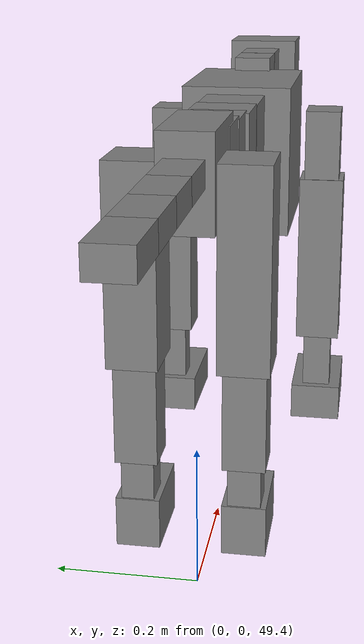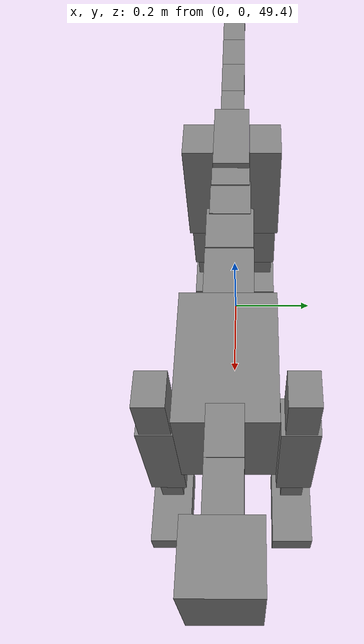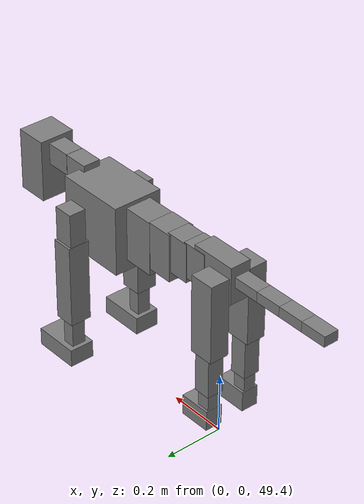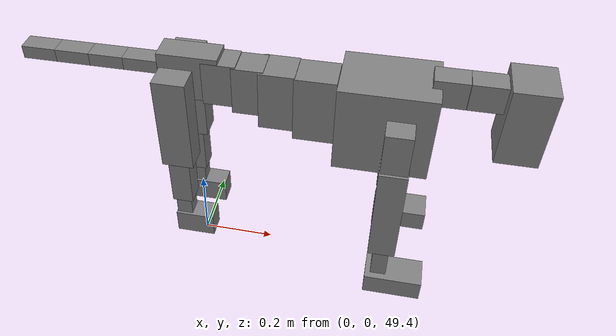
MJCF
<mujoco model="dog">

    <default>
        <joint armature="0.02" stiffness="1" damping="0.2" limited="true"/>
        <geom condim="3" friction="1 0.05 0.05" margin="0.01"/>
        <motor ctrllimited="true" ctrlrange="-1.0 1.0" forcelimited="true" gear="50"/>
    </default>

    <compiler inertiafromgeom="true" angle="radian"/>

    <option timestep="0.016" iterations="50" tolerance="1e-10" solver="Newton" jacobian="dense" cone="pyramidal"/>

    <size nconmax="20000" njmax="60000" nstack="5000000"/>
    <visual>
        <map force="0.1" zfar="30"/>
        <rgba haze="0.15 0.25 0.35 1"/>
        <quality shadowsize="2048"/>
        <global offwidth="800" offheight="800"/>
    </visual>

    <asset>
        <texture type="skybox" builtin="gradient" rgb1="0.3 0.5 0.7" rgb2="0 0 0" width="512" height="512"/>
        <texture name="texplane" type="2d" builtin="checker" rgb1=".2 .3 .4" rgb2=".1 0.15 0.2" width="512" height="512"
                 mark="cross" markrgb=".8 .8 .8"/>
        <texture name="texgeom" type="cube" builtin="flat" mark="cross" width="127" height="1278" rgb1="0.8 0.6 0.4"
                 rgb2="0.8 0.6 0.4" markrgb="1 1 1" random="0.01"/>

        <material name="matplane" reflectance="0.3" texture="texplane" texrepeat="1 1" texuniform="true"/>
        <material name="matgeom" texture="texgeom" texuniform="true" rgba="0.8 0.6 .4 1"/>
    </asset>

    <worldbody>
        <geom name="floor" pos="0 0 0" size="0 0 .25" type="plane" material="matplane" condim="3"/>

        <light directional="false" diffuse=".2 .2 .2" specular="0 0 0" pos="0 0 5" dir="0 0 -1" castshadow="false"/>
        <light mode="targetbodycom" target="torso" directional="false" diffuse=".8 .8 .8" specular="0.3 0.3 0.3"
               pos="0 0 4.0" dir="0 0 -1"/>

        <body name="root" pos="0 0 50">
            <freejoint name="root_1"/>
            <geom type="box" pos="0 0 -0.02" size="0.0774  0.0358  0.063" density="2030"/>

            <body name="spine1" pos="0.054 0 0">
                <joint name="spine1_y" axis="0 1 0" range="0 0.7" limited="true"/>
                <geom type="box" pos="0.02375 0 -0.03" size="0.04375  0.0375  0.05985" density="2030"/>

                <body name="spine2" pos="0.0612 0 0">
                    <joint name="spine2_y" axis="0 1 0" range="-0.15 0.15" limited="true"/>
                    <geom type="box" pos="0.03555  0  -0.04" size="0.04055  0.039  0.06615" density="2030"/>

                    <body name="spine3" pos="0.0730 0 0">
                        <joint name="spine3_y" axis="0 1 0" range="-0.15 0.15" limited="true"/>
                        <geom type="box" pos="0.03555  0  -0.057" size="0.04555  0.0445  0.081" density="2030"/>

                        <body name="spine4" pos="0.0780 0 0">
                            <joint name="spine4_y" axis="0 1 0" range="-0.15 0.15" limited="true"/>
                            <geom type="box" pos="0.05265  0  -0.07" size="0.05265  0.045  0.09135" density="2030"/>

                            <body name="torso" pos="0.1082 0 0">
                                <joint name="torso_y" axis="0 1 0" range="-0.15 0.15" limited="true"/>
                                <geom type="box" pos="0.11925  0  -0.085" size="0.11925  0.085  0.11745"
                                      density="2030"/>

                                <body name="neck1" pos="0.2160  0   0.0180">
                                    <joint name="neck1_y" axis="0 1 0" range="-1.2  -1" limited="true"/>
                                    <geom type="box" pos="0.0423  0  0" size="0.0423  0.03  0.036" density="2325"/>

                                    <body name="neck2" pos="0.0853  0  0">
                                        <joint name="neck2_y" axis="0 1 0" range="0.1  0" limited="true"/>
                                        <geom type="box" pos="0.0423  0  0" size="0.0423  0.03  0.036" density="2325"/>

                                        <body name="head" pos="0.0853  0  0">
                                            <joint name="head_y" axis="0 1 0" range="-0.3  -0.2" limited="true"/>
                                            <geom type="box" pos="0.0531  0  -0.055" size="0.0531  0.06  0.1044"
                                                  density="4030"/>

                                        </body>
                                    </body>
                                </body>

                                <body name="front_shoulder" pos="0.156  0   -0.0480">
                                    <joint name="front_shoulder_y" axis="0 1 0" range="-1 1.5" limited="true"/>
                                    <geom type="box" pos="0 0.13 -0.0442" size="0.0336  0.0287  0.0708" density="1158"/>
                                    <geom type="box" pos="0 -0.13 -0.0442" size="0.0336  0.0287  0.0708"
                                          density="1158"/>

                                    <body name="front_elbow" pos="0  0  -0.0884">
                                        <joint name="front_elbow_y" axis="0 1 0" range="-2 0" limited="true"/>
                                        <geom type="box" pos="0 0.13 -0.1409" size="0.0355  0.0363  0.1409"
                                              density="1081"/>
                                        <geom type="box" pos="0 -0.13 -0.1409" size="0.0355  0.0363  0.1409"
                                              density="1081"/>

                                        <body name="front_wrist" pos="0  0  -0.2818">
                                            <joint name="front_wrist_y" axis="0 1 0" range="-0.2 0" limited="true"/>
                                            <geom type="box" pos="0 0.13 -0.0543" size="0.0211  0.0234  0.0674"
                                                  density="1664"/>
                                            <geom type="box" pos="0 -0.13 -0.0543" size="0.0211  0.0234  0.0674"
                                                  density="1664"/>

                                            <body name="front_finger_end" pos="0  0  -0.1086">
                                                <joint name="front_finger_y" axis="0 1 0" range="-0.4 1"
                                                       limited="true"/>
                                                <geom type="box" pos="0.0421  0.13  -0.0151"
                                                      size="0.0772  0.0421  0.0301" density="1515"/>
                                                <geom type="box" pos="0.0421  -0.13  -0.0151"
                                                      size="0.0772  0.0421  0.0301" density="1515"/>

                                            </body>

                                        </body>
                                    </body>
                                </body>

                            </body>
                        </body>
                    </body>
                </body>
            </body>

            <body name="back_hip" pos="-0.03 0 -0.018">
                <joint name="back_hip_y" axis="0 1 0" range="-1.5 0.3" limited="true"/>
                <geom type="box" pos="0 0.07 -0.1098" size="0.0424  0.0332  0.1326" density="1154"/>
                <geom type="box" pos="0 -0.07 -0.1098" size="0.0424  0.0332  0.1326" density="1154"/>

                <body name="back_knee" pos="0  0  -0.2197">
                    <joint name="back_knee_y" axis="0 1 0" range="0 2.8" limited="true"/>
                    <geom type="box" pos="0 0.07 -0.0713" size="0.0284  0.0280  0.0868" density="1227"/>
                    <geom type="box" pos="0 -0.07 -0.0713" size="0.0284  0.0280  0.0868" density="1227"/>

                    <body name="back_ankle" pos="0  0  -0.1425">
                        <joint name="back_ankle_y" axis="0 1 0" range="-2.2 0" limited="true"/>
                        <geom type="box" pos="0 0.07 -0.0421" size="0.0216  0.0216  0.0534" density="1284"/>
                        <geom type="box" pos="0 -0.07 -0.0421" size="0.0216  0.0216  0.0534" density="1284"/>

                        <body name="back_toe_end" pos="0  0  -0.0843">
                            <joint name="back_toe_y" axis="0 1 0" range="-0.4 1" limited="true"/>
                            <geom type="box" pos="0.0291  0.07  -0.0193" size="0.0534  0.0291  0.0343" density="1515"/>
                            <geom type="box" pos="0.0291  -0.07  -0.0193" size="0.0534  0.0291  0.0343" density="1515"/>

                        </body>
                    </body>
                </body>
            </body>

            <body name="tail1" pos="-0.074 0 -0.006">
                <joint name="tail1_y" axis="0 1 0" range="-0.2 0.2" limited="true"/>
                <geom type="box" pos="-0.0536  0  0" size="0.045  0.025  0.0175" density="1587"/>

                <body name="tail2" pos="-0.09 0 0">
                    <joint name="tail2_y" axis="0 1 0" range="-0.2 0.2" limited="true"/>
                    <geom type="box" pos="-0.0536  0  0" size="0.045  0.025  0.0175" density="1587"/>

                    <body name="tail3" pos="-0.09 0 0">
                        <joint name="tail3_y" axis="0 1 0" range="-0.2 0.2" limited="true"/>
                        <geom type="box" pos="-0.0536  0  0" size="0.045  0.025  0.0175" density="1587"/>

                        <body name="tail4" pos="-0.09 0 0">
                            <joint name="tail4_y" axis="0 1 0" range="-0.2 0.2" limited="true"/>
                            <geom type="box" pos="-0.0536  0  0" size="0.045  0.025  0.0175" density="1587"/>

                        </body>
                    </body>
                </body>
            </body>
        </body>
    </worldbody>

    <actuator>
        <motor joint="spine1_y" forcerange="-150 150     "/>
        <motor joint="spine2_y" forcerange="-150 150     "/>
        <motor joint="spine3_y" forcerange="-150 150     "/>
        <motor joint="spine4_y" forcerange="-150 150     "/>
        <motor joint="torso_y" forcerange="-150 150     "/>
        <motor joint="neck1_y" forcerange="-100 100       "/>
        <motor joint="neck2_y" forcerange="-100 100       "/>
        <motor joint="head_y" forcerange="-150 150       "/>
        <motor joint="front_shoulder_y" forcerange="-131.09 160.26"/>
        <motor joint="front_elbow_y" forcerange="-190.30 173.46"/>
        <motor joint="front_wrist_y" forcerange="-116.06 71.54"/>
        <motor joint="front_finger_y" forcerange="-92.95 91.70"/>
        <motor joint="back_hip_y" forcerange="-345.96 297.24"/>
        <motor joint="back_knee_y" forcerange="-210.91 395.82"/>
        <motor joint="back_angle_y" forcerange="-98.25 147.61"/>
        <motor joint="back_toe_y" forcerange="-23.84 128.96"/>
        <motor joint="tail1_y" forcerange="-50 50     "/>
        <motor joint="tail2_y" forcerange="-50 50     "/>
        <motor joint="tail3_y" forcerange="-50 50     "/>
        <motor joint="tail4_y" forcerange="-50 50     "/>
    </actuator>
</mujoco>
